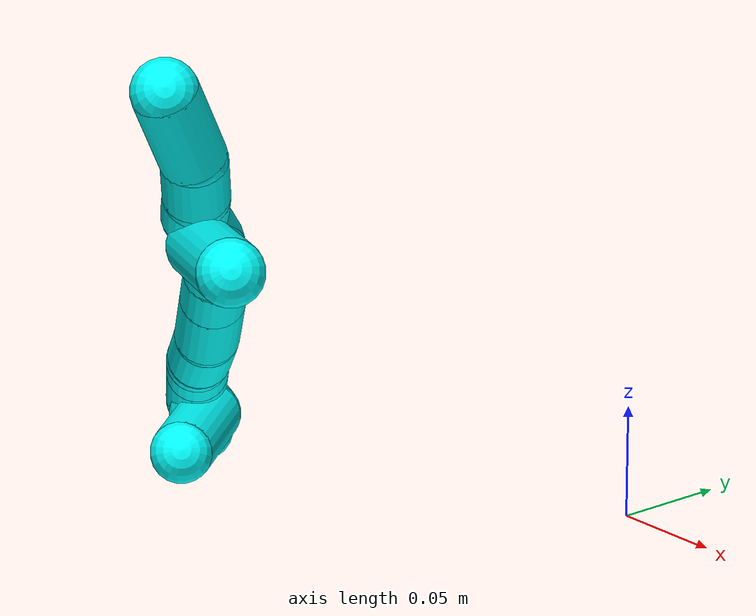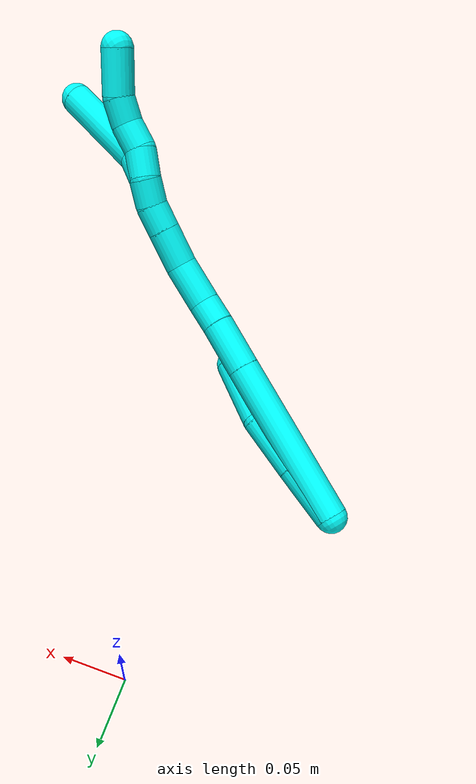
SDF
<sdf version="1.7">
 <world name="default">
  <model name="3">
   <static>0</static>
   <link name="3">
    <collision name="collision-cylinder-e_1_2_8">
     <pose>-0.00111 0.00306 0.022981 -0.132392 -0.047859 0.003173</pose>
     <geometry><cylinder><radius>0.0125</radius><length>0.046421</length></cylinder></geometry>
     <surface>
      <friction><ode><mu>1.16</mu><mu2>1.16</mu2><slip1>0</slip1><slip2>0</slip2></ode></friction>
      <contact><ode><kp>1e+06</kp><kd>1</kd><max_vel>0</max_vel><min_depth>0.001</min_depth></ode></contact>
     </surface>
    </collision>
    <visual name="visual-cylinder-e_1_2_8">
     <pose>-0.00111 0.00306 0.022981 -0.132392 -0.047859 0.003173</pose>
     <geometry><cylinder><radius>0.0125</radius><length>0.046421</length></cylinder></geometry>
     <material><ambient>0.003922 1 0.996078 1</ambient></material>
    </visual>
    <collision name="collision-cylinder-e_2_8_9">
     <pose>-0.002598 0.009752 0.069147 -0.155336 -0.016083 0.001252</pose>
     <geometry><cylinder><radius>0.0125</radius><length>0.046941</length></cylinder></geometry>
     <surface>
      <friction><ode><mu>1.16</mu><mu2>1.16</mu2><slip1>0</slip1><slip2>0</slip2></ode></friction>
      <contact><ode><kp>1e+06</kp><kd>1</kd><max_vel>0</max_vel><min_depth>0.001</min_depth></ode></contact>
     </surface>
    </collision>
    <visual name="visual-cylinder-e_2_8_9">
     <pose>-0.002598 0.009752 0.069147 -0.155336 -0.016083 0.001252</pose>
     <geometry><cylinder><radius>0.0125</radius><length>0.046941</length></cylinder></geometry>
     <material><ambient>0.003922 1 0.996078 1</ambient></material>
    </visual>
    <collision name="collision-cylinder-e_3_9_6">
     <pose>0.00452 0.021932 0.118268 -0.318419 0.267887 -0.043266</pose>
     <geometry><cylinder><radius>0.0125</radius><length>0.056638</length></cylinder></geometry>
     <surface>
      <friction><ode><mu>1.16</mu><mu2>1.16</mu2><slip1>0</slip1><slip2>0</slip2></ode></friction>
      <contact><ode><kp>1e+06</kp><kd>1</kd><max_vel>0</max_vel><min_depth>0.001</min_depth></ode></contact>
     </surface>
    </collision>
    <visual name="visual-cylinder-e_3_9_6">
     <pose>0.00452 0.021932 0.118268 -0.318419 0.267887 -0.043266</pose>
     <geometry><cylinder><radius>0.0125</radius><length>0.056638</length></cylinder></geometry>
     <material><ambient>0.003922 1 0.996078 1</ambient></material>
    </visual>
    <collision name="collision-cylinder-e_1_2_10">
     <pose>-0.000271 0.003095 0.021344 -0.144026 -0.012576 0.000907</pose>
     <geometry><cylinder><radius>0.0125</radius><length>0.043137</length></cylinder></geometry>
     <surface>
      <friction><ode><mu>1.16</mu><mu2>1.16</mu2><slip1>0</slip1><slip2>0</slip2></ode></friction>
      <contact><ode><kp>1e+06</kp><kd>1</kd><max_vel>0</max_vel><min_depth>0.001</min_depth></ode></contact>
     </surface>
    </collision>
    <visual name="visual-cylinder-e_1_2_10">
     <pose>-0.000271 0.003095 0.021344 -0.144026 -0.012576 0.000907</pose>
     <geometry><cylinder><radius>0.0125</radius><length>0.043137</length></cylinder></geometry>
     <material><ambient>0.003922 1 0.996078 1</ambient></material>
    </visual>
    <collision name="collision-cylinder-e_2_10_11">
     <pose>0.000154 0.008786 0.057131 -0.177764 0.047412 -0.004226</pose>
     <geometry><cylinder><radius>0.0125</radius><length>0.029383</length></cylinder></geometry>
     <surface>
      <friction><ode><mu>1.16</mu><mu2>1.16</mu2><slip1>0</slip1><slip2>0</slip2></ode></friction>
      <contact><ode><kp>1e+06</kp><kd>1</kd><max_vel>0</max_vel><min_depth>0.001</min_depth></ode></contact>
     </surface>
    </collision>
    <visual name="visual-cylinder-e_2_10_11">
     <pose>0.000154 0.008786 0.057131 -0.177764 0.047412 -0.004226</pose>
     <geometry><cylinder><radius>0.0125</radius><length>0.029383</length></cylinder></geometry>
     <material><ambient>0.003922 1 0.996078 1</ambient></material>
    </visual>
    <collision name="collision-cylinder-e_3_11_5">
     <pose>0.001102 0.015527 0.084672 -0.306592 0.018364 -0.002837</pose>
     <geometry><cylinder><radius>0.0125</radius><length>0.027479</length></cylinder></geometry>
     <surface>
      <friction><ode><mu>1.16</mu><mu2>1.16</mu2><slip1>0</slip1><slip2>0</slip2></ode></friction>
      <contact><ode><kp>1e+06</kp><kd>1</kd><max_vel>0</max_vel><min_depth>0.001</min_depth></ode></contact>
     </surface>
    </collision>
    <visual name="visual-cylinder-e_3_11_5">
     <pose>0.001102 0.015527 0.084672 -0.306592 0.018364 -0.002837</pose>
     <geometry><cylinder><radius>0.0125</radius><length>0.027479</length></cylinder></geometry>
     <material><ambient>0.003922 1 0.996078 1</ambient></material>
    </visual>
    <collision name="collision-cylinder-e_1_2_12">
     <pose>0.000289 -0.000708 0.065774 0.010761 0.004399 2.4e-05</pose>
     <geometry><cylinder><radius>0.0125</radius><length>0.131557</length></cylinder></geometry>
     <surface>
      <friction><ode><mu>1.16</mu><mu2>1.16</mu2><slip1>0</slip1><slip2>0</slip2></ode></friction>
      <contact><ode><kp>1e+06</kp><kd>1</kd><max_vel>0</max_vel><min_depth>0.001</min_depth></ode></contact>
     </surface>
    </collision>
    <visual name="visual-cylinder-e_1_2_12">
     <pose>0.000289 -0.000708 0.065774 0.010761 0.004399 2.4e-05</pose>
     <geometry><cylinder><radius>0.0125</radius><length>0.131557</length></cylinder></geometry>
     <material><ambient>0.003922 1 0.996078 1</ambient></material>
    </visual>
    <collision name="collision-cylinder-e_2_12_13">
     <pose>0.000646 -0.001818 0.15181 0.01983 0.003314 3.3e-05</pose>
     <geometry><cylinder><radius>0.0125</radius><length>0.040532</length></cylinder></geometry>
     <surface>
      <friction><ode><mu>1.16</mu><mu2>1.16</mu2><slip1>0</slip1><slip2>0</slip2></ode></friction>
      <contact><ode><kp>1e+06</kp><kd>1</kd><max_vel>0</max_vel><min_depth>0.001</min_depth></ode></contact>
     </surface>
    </collision>
    <visual name="visual-cylinder-e_2_12_13">
     <pose>0.000646 -0.001818 0.15181 0.01983 0.003314 3.3e-05</pose>
     <geometry><cylinder><radius>0.0125</radius><length>0.040532</length></cylinder></geometry>
     <material><ambient>0.003922 1 0.996078 1</ambient></material>
    </visual>
    <collision name="collision-cylinder-e_3_13_14">
     <pose>0.000524 -0.00204 0.182317 -0.017499 -0.01846 0.000162</pose>
     <geometry><cylinder><radius>0.0125</radius><length>0.020498</length></cylinder></geometry>
     <surface>
      <friction><ode><mu>1.16</mu><mu2>1.16</mu2><slip1>0</slip1><slip2>0</slip2></ode></friction>
      <contact><ode><kp>1e+06</kp><kd>1</kd><max_vel>0</max_vel><min_depth>0.001</min_depth></ode></contact>
     </surface>
    </collision>
    <visual name="visual-cylinder-e_3_13_14">
     <pose>0.000524 -0.00204 0.182317 -0.017499 -0.01846 0.000162</pose>
     <geometry><cylinder><radius>0.0125</radius><length>0.020498</length></cylinder></geometry>
     <material><ambient>0.003922 1 0.996078 1</ambient></material>
    </visual>
    <collision name="collision-cylinder-e_4_14_15">
     <pose>-0.001229 -0.004204 0.209793 0.135143 -0.08969 -0.006074</pose>
     <geometry><cylinder><radius>0.0125</radius><length>0.034918</length></cylinder></geometry>
     <surface>
      <friction><ode><mu>1.16</mu><mu2>1.16</mu2><slip1>0</slip1><slip2>0</slip2></ode></friction>
      <contact><ode><kp>1e+06</kp><kd>1</kd><max_vel>0</max_vel><min_depth>0.001</min_depth></ode></contact>
     </surface>
    </collision>
    <visual name="visual-cylinder-e_4_14_15">
     <pose>-0.001229 -0.004204 0.209793 0.135143 -0.08969 -0.006074</pose>
     <geometry><cylinder><radius>0.0125</radius><length>0.034918</length></cylinder></geometry>
     <material><ambient>0.003922 1 0.996078 1</ambient></material>
    </visual>
    <collision name="collision-cylinder-e_5_15_16">
     <pose>-0.004533 -0.012008 0.241225 0.367151 -0.113837 -0.021158</pose>
     <geometry><cylinder><radius>0.0125</radius><length>0.030629</length></cylinder></geometry>
     <surface>
      <friction><ode><mu>1.16</mu><mu2>1.16</mu2><slip1>0</slip1><slip2>0</slip2></ode></friction>
      <contact><ode><kp>1e+06</kp><kd>1</kd><max_vel>0</max_vel><min_depth>0.001</min_depth></ode></contact>
     </surface>
    </collision>
    <visual name="visual-cylinder-e_5_15_16">
     <pose>-0.004533 -0.012008 0.241225 0.367151 -0.113837 -0.021158</pose>
     <geometry><cylinder><radius>0.0125</radius><length>0.030629</length></cylinder></geometry>
     <material><ambient>0.003922 1 0.996078 1</ambient></material>
    </visual>
    <collision name="collision-cylinder-e_6_16_17">
     <pose>-0.007428 -0.021163 0.265217 0.360659 -0.109981 -0.02007</pose>
     <geometry><cylinder><radius>0.0125</radius><length>0.021057</length></cylinder></geometry>
     <surface>
      <friction><ode><mu>1.16</mu><mu2>1.16</mu2><slip1>0</slip1><slip2>0</slip2></ode></friction>
      <contact><ode><kp>1e+06</kp><kd>1</kd><max_vel>0</max_vel><min_depth>0.001</min_depth></ode></contact>
     </surface>
    </collision>
    <visual name="visual-cylinder-e_6_16_17">
     <pose>-0.007428 -0.021163 0.265217 0.360659 -0.109981 -0.02007</pose>
     <geometry><cylinder><radius>0.0125</radius><length>0.021057</length></cylinder></geometry>
     <material><ambient>0.003922 1 0.996078 1</ambient></material>
    </visual>
    <collision name="collision-cylinder-e_7_17_1">
     <pose>-0.008147 -0.030246 0.283898 0.54514 0.04198 0.011736</pose>
     <geometry><cylinder><radius>0.0125</radius><length>0.02081</length></cylinder></geometry>
     <surface>
      <friction><ode><mu>1.16</mu><mu2>1.16</mu2><slip1>0</slip1><slip2>0</slip2></ode></friction>
      <contact><ode><kp>1e+06</kp><kd>1</kd><max_vel>0</max_vel><min_depth>0.001</min_depth></ode></contact>
     </surface>
    </collision>
    <visual name="visual-cylinder-e_7_17_1">
     <pose>-0.008147 -0.030246 0.283898 0.54514 0.04198 0.011736</pose>
     <geometry><cylinder><radius>0.0125</radius><length>0.02081</length></cylinder></geometry>
     <material><ambient>0.003922 1 0.996078 1</ambient></material>
    </visual>
    <collision name="collision-cylinder-e_1_1_18">
     <pose>-0.005279 -0.033839 0.303603 -0.164712 0.218129 -0.018076</pose>
     <geometry><cylinder><radius>0.0125</radius><length>0.022462</length></cylinder></geometry>
     <surface>
      <friction><ode><mu>1.16</mu><mu2>1.16</mu2><slip1>0</slip1><slip2>0</slip2></ode></friction>
      <contact><ode><kp>1e+06</kp><kd>1</kd><max_vel>0</max_vel><min_depth>0.001</min_depth></ode></contact>
     </surface>
    </collision>
    <visual name="visual-cylinder-e_1_1_18">
     <pose>-0.005279 -0.033839 0.303603 -0.164712 0.218129 -0.018076</pose>
     <geometry><cylinder><radius>0.0125</radius><length>0.022462</length></cylinder></geometry>
     <material><ambient>0.003922 1 0.996078 1</ambient></material>
    </visual>
    <collision name="collision-cylinder-e_2_18_4">
     <pose>-0.006336 -0.022779 0.351904 -0.242246 -0.090078 0.010972</pose>
     <geometry><cylinder><radius>0.0125</radius><length>0.077538</length></cylinder></geometry>
     <surface>
      <friction><ode><mu>1.16</mu><mu2>1.16</mu2><slip1>0</slip1><slip2>0</slip2></ode></friction>
      <contact><ode><kp>1e+06</kp><kd>1</kd><max_vel>0</max_vel><min_depth>0.001</min_depth></ode></contact>
     </surface>
    </collision>
    <visual name="visual-cylinder-e_2_18_4">
     <pose>-0.006336 -0.022779 0.351904 -0.242246 -0.090078 0.010972</pose>
     <geometry><cylinder><radius>0.0125</radius><length>0.077538</length></cylinder></geometry>
     <material><ambient>0.003922 1 0.996078 1</ambient></material>
    </visual>
    <collision name="collision-cylinder-e_1_1_19">
     <pose>-0.005229 -0.039682 0.302921 0.379818 0.223597 0.043154</pose>
     <geometry><cylinder><radius>0.0125</radius><length>0.022381</length></cylinder></geometry>
     <surface>
      <friction><ode><mu>1.16</mu><mu2>1.16</mu2><slip1>0</slip1><slip2>0</slip2></ode></friction>
      <contact><ode><kp>1e+06</kp><kd>1</kd><max_vel>0</max_vel><min_depth>0.001</min_depth></ode></contact>
     </surface>
    </collision>
    <visual name="visual-cylinder-e_1_1_19">
     <pose>-0.005229 -0.039682 0.302921 0.379818 0.223597 0.043154</pose>
     <geometry><cylinder><radius>0.0125</radius><length>0.022381</length></cylinder></geometry>
     <material><ambient>0.003922 1 0.996078 1</ambient></material>
    </visual>
    <collision name="collision-cylinder-e_2_19_20">
     <pose>-0.00331 -0.045899 0.32373 0.200677 -0.051659 -0.005202</pose>
     <geometry><cylinder><radius>0.0125</radius><length>0.021816</length></cylinder></geometry>
     <surface>
      <friction><ode><mu>1.16</mu><mu2>1.16</mu2><slip1>0</slip1><slip2>0</slip2></ode></friction>
      <contact><ode><kp>1e+06</kp><kd>1</kd><max_vel>0</max_vel><min_depth>0.001</min_depth></ode></contact>
     </surface>
    </collision>
    <visual name="visual-cylinder-e_2_19_20">
     <pose>-0.00331 -0.045899 0.32373 0.200677 -0.051659 -0.005202</pose>
     <geometry><cylinder><radius>0.0125</radius><length>0.021816</length></cylinder></geometry>
     <material><ambient>0.003922 1 0.996078 1</ambient></material>
    </visual>
    <collision name="collision-cylinder-e_3_20_21">
     <pose>-0.004186 -0.05346 0.343339 0.542761 -0.029922 -0.008326</pose>
     <geometry><cylinder><radius>0.0125</radius><length>0.020877</length></cylinder></geometry>
     <surface>
      <friction><ode><mu>1.16</mu><mu2>1.16</mu2><slip1>0</slip1><slip2>0</slip2></ode></friction>
      <contact><ode><kp>1e+06</kp><kd>1</kd><max_vel>0</max_vel><min_depth>0.001</min_depth></ode></contact>
     </surface>
    </collision>
    <visual name="visual-cylinder-e_3_20_21">
     <pose>-0.004186 -0.05346 0.343339 0.542761 -0.029922 -0.008326</pose>
     <geometry><cylinder><radius>0.0125</radius><length>0.020877</length></cylinder></geometry>
     <material><ambient>0.003922 1 0.996078 1</ambient></material>
    </visual>
    <collision name="collision-cylinder-e_4_21_3">
     <pose>-0.000832 -0.07001 0.365194 0.712462 0.211524 0.078963</pose>
     <geometry><cylinder><radius>0.0125</radius><length>0.034926</length></cylinder></geometry>
     <surface>
      <friction><ode><mu>1.16</mu><mu2>1.16</mu2><slip1>0</slip1><slip2>0</slip2></ode></friction>
      <contact><ode><kp>1e+06</kp><kd>1</kd><max_vel>0</max_vel><min_depth>0.001</min_depth></ode></contact>
     </surface>
    </collision>
    <visual name="visual-cylinder-e_4_21_3">
     <pose>-0.000832 -0.07001 0.365194 0.712462 0.211524 0.078963</pose>
     <geometry><cylinder><radius>0.0125</radius><length>0.034926</length></cylinder></geometry>
     <material><ambient>0.003922 1 0.996078 1</ambient></material>
    </visual>
    <collision name="collision-sphere-3">
     <pose>0.002834 -0.081171 0.378115 0 -0 0</pose>
     <geometry><sphere><radius>0.0125</radius></sphere></geometry>
     <surface>
      <friction><ode><mu>1.16</mu><mu2>1.16</mu2><slip1>0</slip1><slip2>0</slip2></ode></friction>
      <contact><ode><kp>1e+06</kp><kd>1</kd><max_vel>0</max_vel><min_depth>0.001</min_depth></ode></contact>
     </surface>
    </collision>
    <visual name="visual-sphere-3">
     <pose>0.002834 -0.081171 0.378115 0 -0 0</pose>
     <geometry><sphere><radius>0.0125</radius></sphere></geometry>
     <material><ambient>0.003922 1 0.996078 1</ambient></material>
    </visual>
    <collision name="collision-sphere-21">
     <pose>-0.004498 -0.058849 0.352273 0 -0 0</pose>
     <geometry><sphere><radius>0.0125</radius></sphere></geometry>
     <surface>
      <friction><ode><mu>1.16</mu><mu2>1.16</mu2><slip1>0</slip1><slip2>0</slip2></ode></friction>
      <contact><ode><kp>1e+06</kp><kd>1</kd><max_vel>0</max_vel><min_depth>0.001</min_depth></ode></contact>
     </surface>
    </collision>
    <visual name="visual-sphere-21">
     <pose>-0.004498 -0.058849 0.352273 0 -0 0</pose>
     <geometry><sphere><radius>0.0125</radius></sphere></geometry>
     <material><ambient>0.003922 1 0.996078 1</ambient></material>
    </visual>
    <collision name="collision-sphere-20">
     <pose>-0.003874 -0.048071 0.334405 0 -0 0</pose>
     <geometry><sphere><radius>0.0125</radius></sphere></geometry>
     <surface>
      <friction><ode><mu>1.16</mu><mu2>1.16</mu2><slip1>0</slip1><slip2>0</slip2></ode></friction>
      <contact><ode><kp>1e+06</kp><kd>1</kd><max_vel>0</max_vel><min_depth>0.001</min_depth></ode></contact>
     </surface>
    </collision>
    <visual name="visual-sphere-20">
     <pose>-0.003874 -0.048071 0.334405 0 -0 0</pose>
     <geometry><sphere><radius>0.0125</radius></sphere></geometry>
     <material><ambient>0.003922 1 0.996078 1</ambient></material>
    </visual>
    <collision name="collision-sphere-19">
     <pose>-0.002747 -0.043728 0.313055 0 -0 0</pose>
     <geometry><sphere><radius>0.0125</radius></sphere></geometry>
     <surface>
      <friction><ode><mu>1.16</mu><mu2>1.16</mu2><slip1>0</slip1><slip2>0</slip2></ode></friction>
      <contact><ode><kp>1e+06</kp><kd>1</kd><max_vel>0</max_vel><min_depth>0.001</min_depth></ode></contact>
     </surface>
    </collision>
    <visual name="visual-sphere-19">
     <pose>-0.002747 -0.043728 0.313055 0 -0 0</pose>
     <geometry><sphere><radius>0.0125</radius></sphere></geometry>
     <material><ambient>0.003922 1 0.996078 1</ambient></material>
    </visual>
    <collision name="collision-sphere-11">
     <pose>0.00085 0.011381 0.071575 0 -0 0</pose>
     <geometry><sphere><radius>0.0125</radius></sphere></geometry>
     <surface>
      <friction><ode><mu>1.16</mu><mu2>1.16</mu2><slip1>0</slip1><slip2>0</slip2></ode></friction>
      <contact><ode><kp>1e+06</kp><kd>1</kd><max_vel>0</max_vel><min_depth>0.001</min_depth></ode></contact>
     </surface>
    </collision>
    <visual name="visual-sphere-11">
     <pose>0.00085 0.011381 0.071575 0 -0 0</pose>
     <geometry><sphere><radius>0.0125</radius></sphere></geometry>
     <material><ambient>0.003922 1 0.996078 1</ambient></material>
    </visual>
    <collision name="collision-sphere-10">
     <pose>-0.000542 0.006191 0.042687 0 -0 0</pose>
     <geometry><sphere><radius>0.0125</radius></sphere></geometry>
     <surface>
      <friction><ode><mu>1.16</mu><mu2>1.16</mu2><slip1>0</slip1><slip2>0</slip2></ode></friction>
      <contact><ode><kp>1e+06</kp><kd>1</kd><max_vel>0</max_vel><min_depth>0.001</min_depth></ode></contact>
     </surface>
    </collision>
    <visual name="visual-sphere-10">
     <pose>-0.000542 0.006191 0.042687 0 -0 0</pose>
     <geometry><sphere><radius>0.0125</radius></sphere></geometry>
     <material><ambient>0.003922 1 0.996078 1</ambient></material>
    </visual>
    <collision name="collision-sphere-6">
     <pose>0.012016 0.030481 0.144204 0 -0 0</pose>
     <geometry><sphere><radius>0.0125</radius></sphere></geometry>
     <surface>
      <friction><ode><mu>1.16</mu><mu2>1.16</mu2><slip1>0</slip1><slip2>0</slip2></ode></friction>
      <contact><ode><kp>1e+06</kp><kd>1</kd><max_vel>0</max_vel><min_depth>0.001</min_depth></ode></contact>
     </surface>
    </collision>
    <visual name="visual-sphere-6">
     <pose>0.012016 0.030481 0.144204 0 -0 0</pose>
     <geometry><sphere><radius>0.0125</radius></sphere></geometry>
     <material><ambient>0.003922 1 0.996078 1</ambient></material>
    </visual>
    <collision name="collision-sphere-9">
     <pose>-0.002976 0.013382 0.092332 0 -0 0</pose>
     <geometry><sphere><radius>0.0125</radius></sphere></geometry>
     <surface>
      <friction><ode><mu>1.16</mu><mu2>1.16</mu2><slip1>0</slip1><slip2>0</slip2></ode></friction>
      <contact><ode><kp>1e+06</kp><kd>1</kd><max_vel>0</max_vel><min_depth>0.001</min_depth></ode></contact>
     </surface>
    </collision>
    <visual name="visual-sphere-9">
     <pose>-0.002976 0.013382 0.092332 0 -0 0</pose>
     <geometry><sphere><radius>0.0125</radius></sphere></geometry>
     <material><ambient>0.003922 1 0.996078 1</ambient></material>
    </visual>
    <collision name="collision-sphere-2">
     <geometry><sphere><radius>0.0125</radius></sphere></geometry>
     <surface>
      <friction><ode><mu>1.16</mu><mu2>1.16</mu2><slip1>0</slip1><slip2>0</slip2></ode></friction>
      <contact><ode><kp>1e+06</kp><kd>1</kd><max_vel>0</max_vel><min_depth>0.001</min_depth></ode></contact>
     </surface>
    </collision>
    <visual name="visual-sphere-2">
     <geometry><sphere><radius>0.0125</radius></sphere></geometry>
     <material><ambient>0.003922 1 0.996078 1</ambient></material>
    </visual>
    <collision name="collision-sphere-8">
     <pose>-0.002221 0.006121 0.045962 0 -0 0</pose>
     <geometry><sphere><radius>0.0125</radius></sphere></geometry>
     <surface>
      <friction><ode><mu>1.16</mu><mu2>1.16</mu2><slip1>0</slip1><slip2>0</slip2></ode></friction>
      <contact><ode><kp>1e+06</kp><kd>1</kd><max_vel>0</max_vel><min_depth>0.001</min_depth></ode></contact>
     </surface>
    </collision>
    <visual name="visual-sphere-8">
     <pose>-0.002221 0.006121 0.045962 0 -0 0</pose>
     <geometry><sphere><radius>0.0125</radius></sphere></geometry>
     <material><ambient>0.003922 1 0.996078 1</ambient></material>
    </visual>
    <collision name="collision-sphere-5">
     <pose>0.001355 0.019673 0.097769 0 -0 0</pose>
     <geometry><sphere><radius>0.0125</radius></sphere></geometry>
     <surface>
      <friction><ode><mu>1.16</mu><mu2>1.16</mu2><slip1>0</slip1><slip2>0</slip2></ode></friction>
      <contact><ode><kp>1e+06</kp><kd>1</kd><max_vel>0</max_vel><min_depth>0.001</min_depth></ode></contact>
     </surface>
    </collision>
    <visual name="visual-sphere-5">
     <pose>0.001355 0.019673 0.097769 0 -0 0</pose>
     <geometry><sphere><radius>0.0125</radius></sphere></geometry>
     <material><ambient>0.003922 1 0.996078 1</ambient></material>
    </visual>
    <collision name="collision-sphere-12">
     <pose>0.000579 -0.001416 0.131548 0 -0 0</pose>
     <geometry><sphere><radius>0.0125</radius></sphere></geometry>
     <surface>
      <friction><ode><mu>1.16</mu><mu2>1.16</mu2><slip1>0</slip1><slip2>0</slip2></ode></friction>
      <contact><ode><kp>1e+06</kp><kd>1</kd><max_vel>0</max_vel><min_depth>0.001</min_depth></ode></contact>
     </surface>
    </collision>
    <visual name="visual-sphere-12">
     <pose>0.000579 -0.001416 0.131548 0 -0 0</pose>
     <geometry><sphere><radius>0.0125</radius></sphere></geometry>
     <material><ambient>0.003922 1 0.996078 1</ambient></material>
    </visual>
    <collision name="collision-sphere-13">
     <pose>0.000713 -0.002219 0.172072 0 -0 0</pose>
     <geometry><sphere><radius>0.0125</radius></sphere></geometry>
     <surface>
      <friction><ode><mu>1.16</mu><mu2>1.16</mu2><slip1>0</slip1><slip2>0</slip2></ode></friction>
      <contact><ode><kp>1e+06</kp><kd>1</kd><max_vel>0</max_vel><min_depth>0.001</min_depth></ode></contact>
     </surface>
    </collision>
    <visual name="visual-sphere-13">
     <pose>0.000713 -0.002219 0.172072 0 -0 0</pose>
     <geometry><sphere><radius>0.0125</radius></sphere></geometry>
     <material><ambient>0.003922 1 0.996078 1</ambient></material>
    </visual>
    <collision name="collision-sphere-14">
     <pose>0.000335 -0.001861 0.192563 0 -0 0</pose>
     <geometry><sphere><radius>0.0125</radius></sphere></geometry>
     <surface>
      <friction><ode><mu>1.16</mu><mu2>1.16</mu2><slip1>0</slip1><slip2>0</slip2></ode></friction>
      <contact><ode><kp>1e+06</kp><kd>1</kd><max_vel>0</max_vel><min_depth>0.001</min_depth></ode></contact>
     </surface>
    </collision>
    <visual name="visual-sphere-14">
     <pose>0.000335 -0.001861 0.192563 0 -0 0</pose>
     <geometry><sphere><radius>0.0125</radius></sphere></geometry>
     <material><ambient>0.003922 1 0.996078 1</ambient></material>
    </visual>
    <collision name="collision-sphere-15">
     <pose>-0.002793 -0.006546 0.227023 0 -0 0</pose>
     <geometry><sphere><radius>0.0125</radius></sphere></geometry>
     <surface>
      <friction><ode><mu>1.16</mu><mu2>1.16</mu2><slip1>0</slip1><slip2>0</slip2></ode></friction>
      <contact><ode><kp>1e+06</kp><kd>1</kd><max_vel>0</max_vel><min_depth>0.001</min_depth></ode></contact>
     </surface>
    </collision>
    <visual name="visual-sphere-15">
     <pose>-0.002793 -0.006546 0.227023 0 -0 0</pose>
     <geometry><sphere><radius>0.0125</radius></sphere></geometry>
     <material><ambient>0.003922 1 0.996078 1</ambient></material>
    </visual>
    <collision name="collision-sphere-16">
     <pose>-0.006272 -0.01747 0.255426 0 -0 0</pose>
     <geometry><sphere><radius>0.0125</radius></sphere></geometry>
     <surface>
      <friction><ode><mu>1.16</mu><mu2>1.16</mu2><slip1>0</slip1><slip2>0</slip2></ode></friction>
      <contact><ode><kp>1e+06</kp><kd>1</kd><max_vel>0</max_vel><min_depth>0.001</min_depth></ode></contact>
     </surface>
    </collision>
    <visual name="visual-sphere-16">
     <pose>-0.006272 -0.01747 0.255426 0 -0 0</pose>
     <geometry><sphere><radius>0.0125</radius></sphere></geometry>
     <material><ambient>0.003922 1 0.996078 1</ambient></material>
    </visual>
    <collision name="collision-sphere-17">
     <pose>-0.008583 -0.024855 0.275009 0 -0 0</pose>
     <geometry><sphere><radius>0.0125</radius></sphere></geometry>
     <surface>
      <friction><ode><mu>1.16</mu><mu2>1.16</mu2><slip1>0</slip1><slip2>0</slip2></ode></friction>
      <contact><ode><kp>1e+06</kp><kd>1</kd><max_vel>0</max_vel><min_depth>0.001</min_depth></ode></contact>
     </surface>
    </collision>
    <visual name="visual-sphere-17">
     <pose>-0.008583 -0.024855 0.275009 0 -0 0</pose>
     <geometry><sphere><radius>0.0125</radius></sphere></geometry>
     <material><ambient>0.003922 1 0.996078 1</ambient></material>
    </visual>
    <collision name="collision-sphere-1">
     <pose>-0.00771 -0.035637 0.292787 0 -0 0</pose>
     <geometry><sphere><radius>0.0125</radius></sphere></geometry>
     <surface>
      <friction><ode><mu>1.16</mu><mu2>1.16</mu2><slip1>0</slip1><slip2>0</slip2></ode></friction>
      <contact><ode><kp>1e+06</kp><kd>1</kd><max_vel>0</max_vel><min_depth>0.001</min_depth></ode></contact>
     </surface>
    </collision>
    <visual name="visual-sphere-1">
     <pose>-0.00771 -0.035637 0.292787 0 -0 0</pose>
     <geometry><sphere><radius>0.0125</radius></sphere></geometry>
     <material><ambient>0.003922 1 0.996078 1</ambient></material>
    </visual>
    <collision name="collision-sphere-18">
     <pose>-0.002849 -0.032041 0.31442 0 -0 0</pose>
     <geometry><sphere><radius>0.0125</radius></sphere></geometry>
     <surface>
      <friction><ode><mu>1.16</mu><mu2>1.16</mu2><slip1>0</slip1><slip2>0</slip2></ode></friction>
      <contact><ode><kp>1e+06</kp><kd>1</kd><max_vel>0</max_vel><min_depth>0.001</min_depth></ode></contact>
     </surface>
    </collision>
    <visual name="visual-sphere-18">
     <pose>-0.002849 -0.032041 0.31442 0 -0 0</pose>
     <geometry><sphere><radius>0.0125</radius></sphere></geometry>
     <material><ambient>0.003922 1 0.996078 1</ambient></material>
    </visual>
    <collision name="collision-sphere-4">
     <pose>-0.009824 -0.013516 0.389389 0 -0 0</pose>
     <geometry><sphere><radius>0.0125</radius></sphere></geometry>
     <surface>
      <friction><ode><mu>1.16</mu><mu2>1.16</mu2><slip1>0</slip1><slip2>0</slip2></ode></friction>
      <contact><ode><kp>1e+06</kp><kd>1</kd><max_vel>0</max_vel><min_depth>0.001</min_depth></ode></contact>
     </surface>
    </collision>
    <visual name="visual-sphere-4">
     <pose>-0.009824 -0.013516 0.389389 0 -0 0</pose>
     <geometry><sphere><radius>0.0125</radius></sphere></geometry>
     <material><ambient>0.003922 1 0.996078 1</ambient></material>
    </visual>
    <inertial>
     <pose>-0.001657 -0.009487 0.17141 0 -0 0</pose>
     <mass>0.75</mass>
     <inertia>
      <ixx>0.000321</ixx>
      <ixy>0</ixy>
      <ixz>0</ixz>
      <iyy>0.000316</iyy>
      <iyz>0</iyz>
      <izz>4.3e-05</izz>
     </inertia>
    </inertial>
   </link>
   <pose>-0.109918 -0.148137 0.057479 -1.15057 0.123776 -2.16131</pose>
  </model>
 </world>
</sdf>
